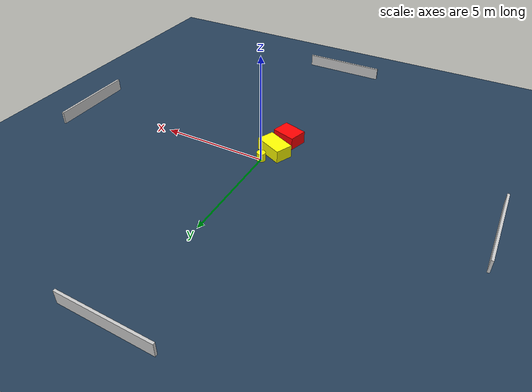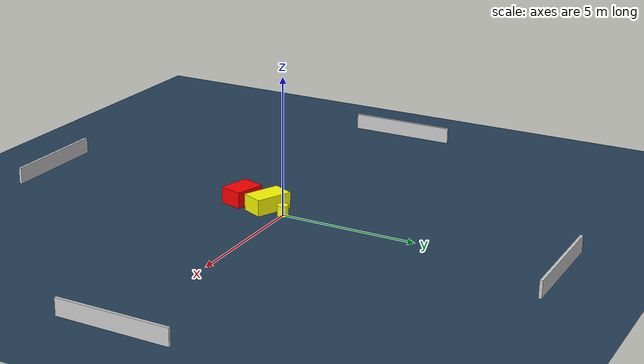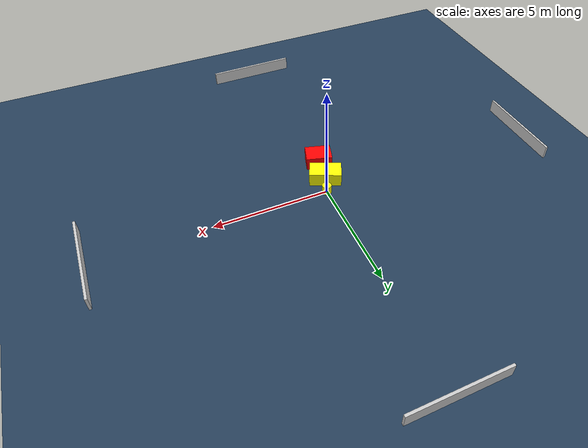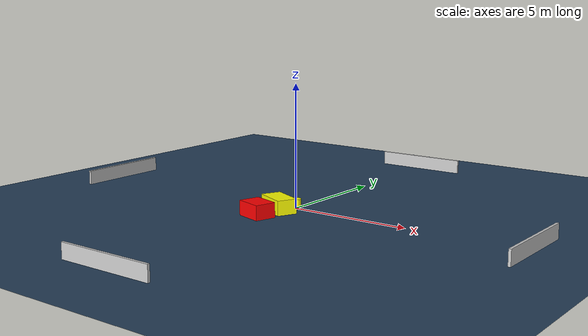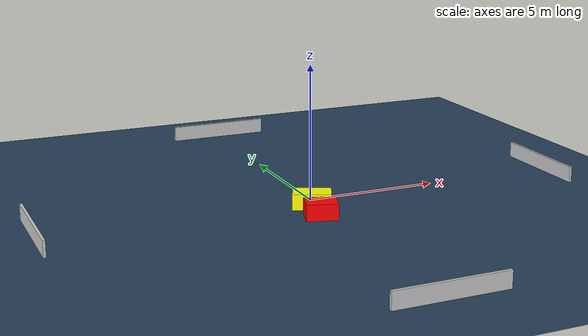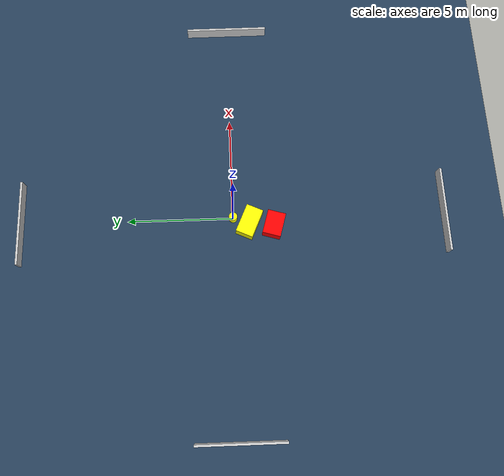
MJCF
<?xml version="1.0" ?>
<mujoco model="generated_environment">
  <option timestep="0.01" integrator="RK4" cone="elliptic"/>
  <default>
    <geom density="1"/>
  </default>
  <asset>
    <texture builtin="gradient" height="3072" name="skybox" rgb1="0.3 0.5 0.7" rgb2="0 0 0" type="skybox" width="512"/>
    <texture builtin="checker" height="300" name="groundplane" rgb1="0.2 0.3 0.4" rgb2="0.1 0.2 0.3" type="2d" width="300"/>
    <material name="groundplane" reflectance="0.2" texrepeat="5 5" texture="groundplane"/>
  </asset>
  <worldbody>
    <light dir="0 0 -1" directional="true" pos="0 0 1.5"/>
    <geom condim="3" friction="0.5 0.005 0.001" material="groundplane" name="floor" pos="0 0 0" size="0 0 0.05" type="plane"/>
    <body name="walls">
      <geom name="wall_1" condim="4" pos="-10.0 0.0 0.3" rgba="0.800000011920929 0.800000011920929 0.800000011920929 1.0" size="0.05 2.0 0.3" type="box"/>
      <geom name="wall_2" condim="4" pos="10.0 0.0 0.3" rgba="0.800000011920929 0.800000011920929 0.800000011920929 1.0" size="0.05 2.0 0.3" type="box"/>
      <geom name="wall_3" condim="4" pos="0.0 -10.0 0.3" rgba="0.800000011920929 0.800000011920929 0.800000011920929 1.0" size="2.0 0.05 0.3" type="box"/>
      <geom name="wall_4" condim="4" pos="0.0 10.0 0.3" rgba="0.800000011920929 0.800000011920929 0.800000011920929 1.0" size="2.0 0.05 0.3" type="box"/>
    </body>
    <body name="robot">
      <joint name="joint_x" type="slide" pos="0 0 0" axis="1 0 0"/>
      <joint name="joint_y" type="slide" pos="0 0 0" axis="0 1 0"/>
      <geom name="robot" type="cylinder" pos="0.0 0.0 0.2" size="0.2 0.2 0.0" mass="5.0" friction="1.0 0.005 0.0001" condim="4" rgba="1.0 1.0 0.0 1.0"/>
    </body>
    <body name="obstacle_1_movable">
      <geom name="obstacle_1_movable" condim="4" pos="-0.2748082608504171 -0.7638598573034977 0.3" euler="0 0 65.61097870488587" friction="0.0 0.005 0.001" rgba="1.0 1.0 0.0 1.0" size="0.41002563196424485 0.6919406366895913 0.3" type="box" mass="0.1"/>
      <joint type="free"/>
    </body>
    <body name="obstacle_2_static">
      <geom name="obstacle_2_static" condim="4" pos="-0.43764989023693324 -1.9075707021302173 0.3" euler="0 0 253.63979314663246" friction="0.0 0.005 0.001" rgba="1.0 0.0 0.0 1.0" size="0.4305690459633208 0.5681438618208384 0.3" type="box"/>
    </body>
  </worldbody>
  <actuator>
    <motor name="actuator_x" joint="joint_x" gear="1" ctrlrange="-1 1"/>
    <motor name="actuator_y" joint="joint_y" gear="1" ctrlrange="-1 1"/>
  </actuator>
</mujoco>
